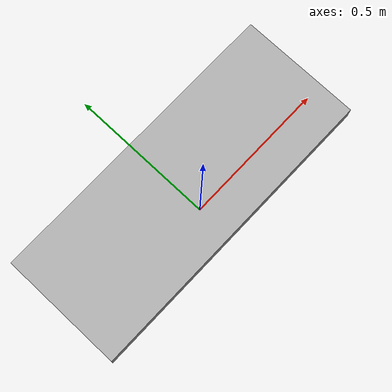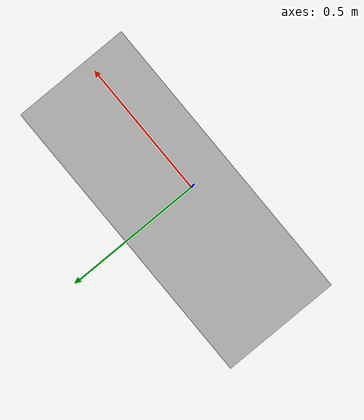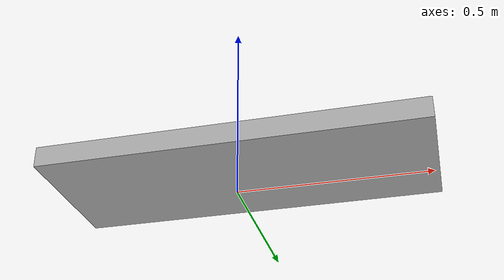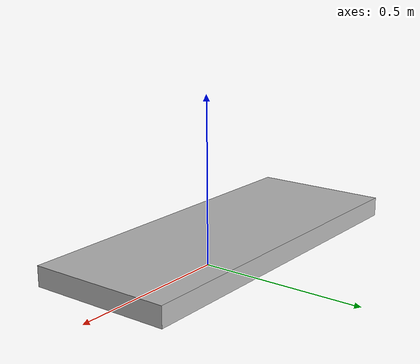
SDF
<?xml version="1.0" ?>
<sdf version="1.5">
  <model name="Table">
    <static>true</static>
    <link name="link">
      <pose>0 0 0 0 0 0</pose>
      <collision name="collision">
        <geometry>
          <mesh>
            <uri>model://home/diana/ws_moveit/src/iiwa_stack/iiwa_gazebo/models/0-Table/meshes/Table.dae</uri>
          </mesh>
        </geometry>
      </collision>
      <visual name="visual">
        <geometry>
          <mesh>
            <uri>model://home/diana/ws_moveit/src/iiwa_stack/iiwa_gazebo/models/0-Table/meshes/Table.dae</uri>
          </mesh>
        </geometry>
        <material>
          <script>
            <uri>model://home/diana/ws_moveit/src/iiwa_stack/iiwa_gazebo/models/0-Table/materials/scripts</uri>
            <uri>model://home/diana/ws_moveit/src/iiwa_stack/iiwa_gazebo/models/0-Table/materials/textures</uri>
            <name>Table/Diffuse</name>
          </script>
        </material>
      </visual>
    </link>
  </model>
</sdf>
